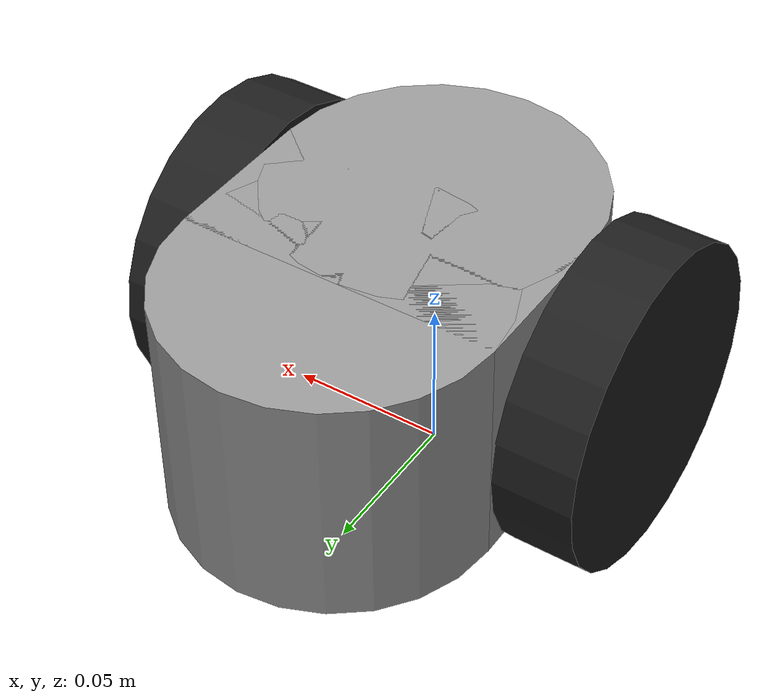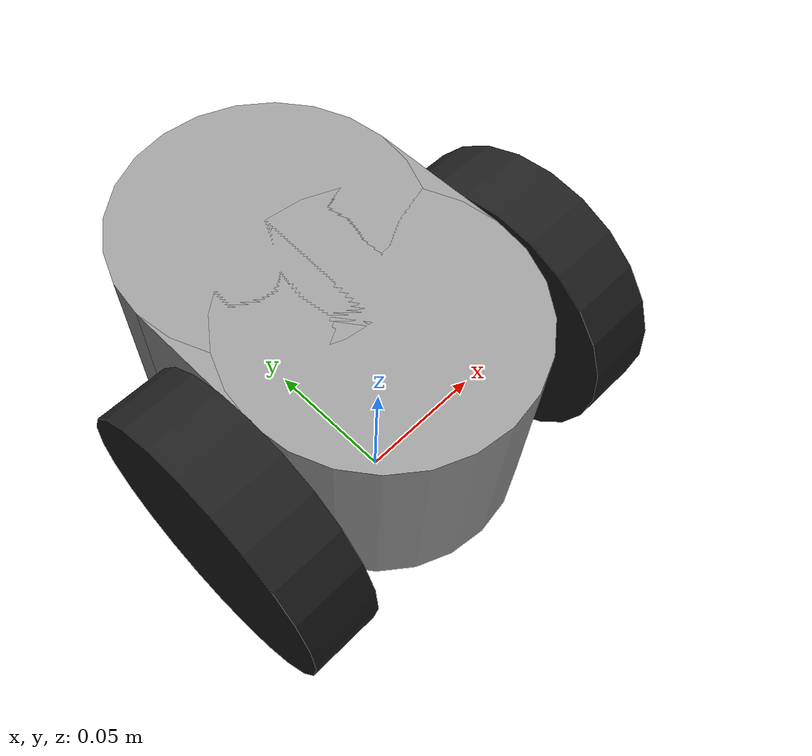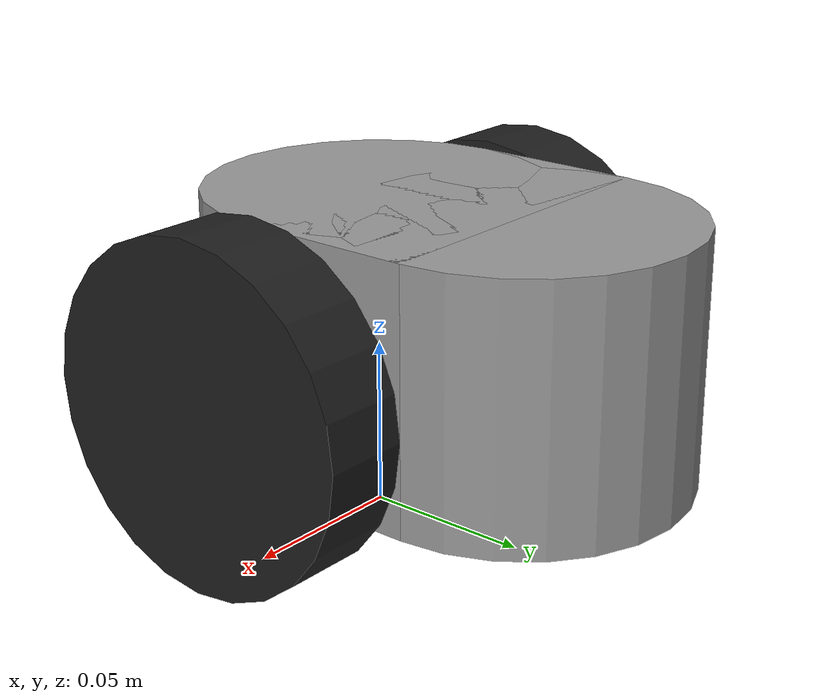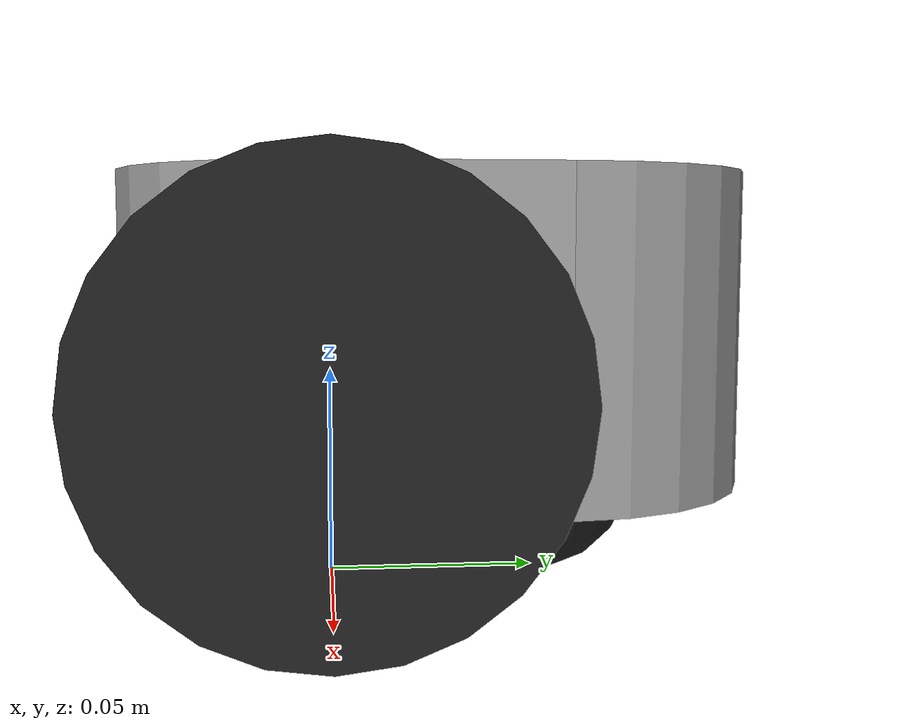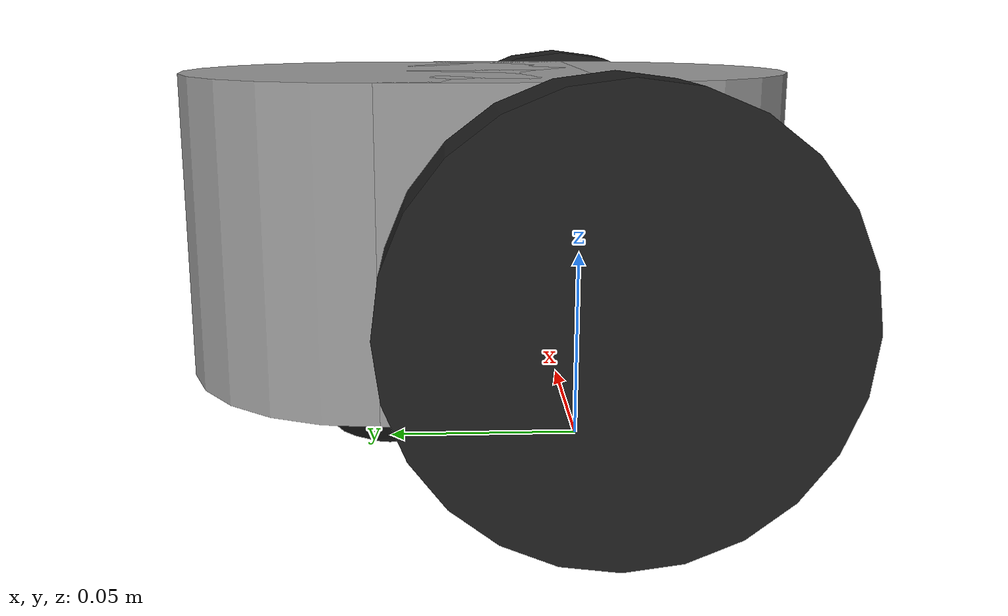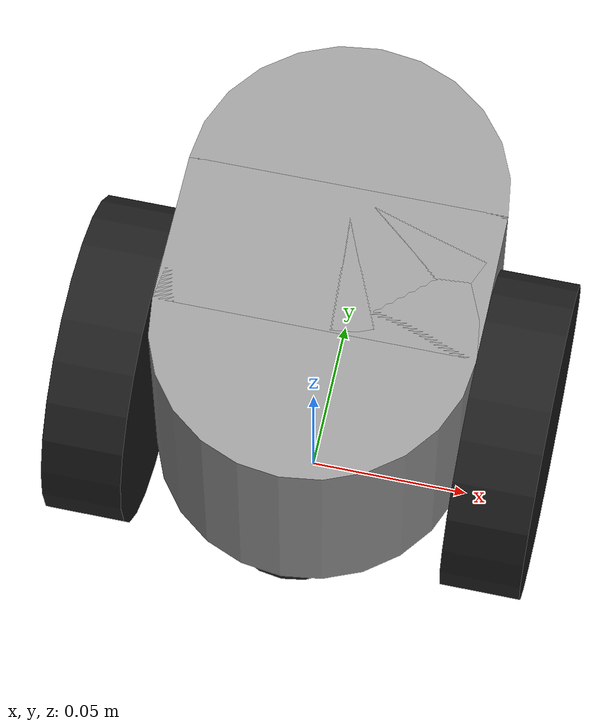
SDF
<?xml version='1.0'?>
<sdf version='1.6'>
  <model name='CSRobo'>
    <link name='Base_Frame'>
      <inertial>
        <mass>0.2</mass>
        <inertia>
          <ixx>0.00021875</ixx>
          <ixy>0</ixy>
          <ixz>0</ixz>
          <iyy>0.00021875</iyy>
          <iyz>0</iyz>
          <izz>0.00025</izz>
        </inertia>
        <pose frame=''>0 0 0 0 -0 0</pose>
      </inertial>
      <pose frame=''>0 0 0.06 0 -0 0</pose>
      <gravity>1</gravity>
      <self_collide>0</self_collide>
      <kinematic>0</kinematic>
      <enable_wind>0</enable_wind>
      <visual name='visual_rear'>
        <pose frame=''>0 0 0 0 -0 0</pose>
        <geometry>
          <cylinder>
            <radius>0.05</radius>
            <length>0.075</length>
          </cylinder>
        </geometry>
        <material>
          <lighting>1</lighting>
          <script>
            <uri>file://media/materials/scripts/gazebo.material</uri>
            <name>Gazebo/Grey</name>
          </script>
          <shader type='pixel'>
            <normal_map>__default__</normal_map>
          </shader>
          <ambient>0.3 0.3 0.3 1</ambient>
          <diffuse>0.7 0.7 0.7 1</diffuse>
          <specular>0.01 0.01 0.01 1</specular>
          <emissive>0 0 0 1</emissive>
        </material>
        <transparency>0</transparency>
        <cast_shadows>1</cast_shadows>
      </visual>
      <visual name='visual_front'>
        <pose frame=''>0 0.05 0 0 -0 0</pose>
        <geometry>
          <cylinder>
            <radius>0.05</radius>
            <length>0.075</length>
          </cylinder>
        </geometry>
        <material>
          <lighting>1</lighting>
          <script>
            <uri>file://media/materials/scripts/gazebo.material</uri>
            <name>Gazebo/Grey</name>
          </script>
          <shader type='pixel'>
            <normal_map>__default__</normal_map>
          </shader>
          <ambient>0.3 0.3 0.3 1</ambient>
          <diffuse>0.7 0.7 0.7 1</diffuse>
          <specular>0.01 0.01 0.01 1</specular>
          <emissive>0 0 0 1</emissive>
        </material>
        <transparency>0</transparency>
        <cast_shadows>1</cast_shadows>
      </visual>
      <visual name='visual_middle'>
        <pose frame=''>0 0.025 0 0 -0 0</pose>
        <geometry>
          <box>
            <size>0.1 0.05 0.075</size>
          </box>
        </geometry>
        <material>
          <lighting>1</lighting>
          <script>
            <uri>file://media/materials/scripts/gazebo.material</uri>
            <name>Gazebo/Grey</name>
          </script>
          <shader type='pixel'>
            <normal_map>__default__</normal_map>
          </shader>
          <ambient>0.3 0.3 0.3 1</ambient>
          <diffuse>0.7 0.7 0.7 1</diffuse>
          <specular>0.01 0.01 0.01 1</specular>
          <emissive>0 0 0 1</emissive>
        </material>
        <transparency>0</transparency>
        <cast_shadows>1</cast_shadows>
      </visual>
      <collision name='collision_middle'>
        <laser_retro>0</laser_retro>
        <max_contacts>10</max_contacts>
        <pose frame=''>0 0.025 0 0 -0 0</pose>
        <geometry>
          <box>
            <size>0.1 0.05 0.075</size>
          </box>
        </geometry>
        <surface>
          <friction>
            <ode>
              <mu>1</mu>
              <mu2>1</mu2>
              <fdir1>0 0 0</fdir1>
              <slip1>0</slip1>
              <slip2>0</slip2>
            </ode>
            <torsional>
              <coefficient>1</coefficient>
              <patch_radius>0</patch_radius>
              <surface_radius>0</surface_radius>
              <use_patch_radius>1</use_patch_radius>
              <ode>
                <slip>0</slip>
              </ode>
            </torsional>
          </friction>
          <bounce>
            <restitution_coefficient>0</restitution_coefficient>
            <threshold>1e+06</threshold>
          </bounce>
          <contact>
            <collide_without_contact>0</collide_without_contact>
            <collide_without_contact_bitmask>1</collide_without_contact_bitmask>
            <collide_bitmask>1</collide_bitmask>
            <ode>
              <soft_cfm>0</soft_cfm>
              <soft_erp>0.2</soft_erp>
              <kp>1e+13</kp>
              <kd>1</kd>
              <max_vel>0.01</max_vel>
              <min_depth>0</min_depth>
            </ode>
            <bullet>
              <split_impulse>1</split_impulse>
              <split_impulse_penetration_threshold>-0.01</split_impulse_penetration_threshold>
              <soft_cfm>0</soft_cfm>
              <soft_erp>0.2</soft_erp>
              <kp>1e+13</kp>
              <kd>1</kd>
            </bullet>
          </contact>
        </surface>
      </collision>
      <collision name='collision_front'>
        <laser_retro>0</laser_retro>
        <max_contacts>10</max_contacts>
        <pose frame=''>0 0.05 0 0 -0 0</pose>
        <geometry>
          <cylinder>
            <radius>0.05</radius>
            <length>0.075</length>
          </cylinder>
        </geometry>
        <surface>
          <friction>
            <ode>
              <mu>1</mu>
              <mu2>1</mu2>
              <fdir1>0 0 0</fdir1>
              <slip1>0</slip1>
              <slip2>0</slip2>
            </ode>
            <torsional>
              <coefficient>1</coefficient>
              <patch_radius>0</patch_radius>
              <surface_radius>0</surface_radius>
              <use_patch_radius>1</use_patch_radius>
              <ode>
                <slip>0</slip>
              </ode>
            </torsional>
          </friction>
          <bounce>
            <restitution_coefficient>0</restitution_coefficient>
            <threshold>1e+06</threshold>
          </bounce>
          <contact>
            <collide_without_contact>0</collide_without_contact>
            <collide_without_contact_bitmask>1</collide_without_contact_bitmask>
            <collide_bitmask>1</collide_bitmask>
            <ode>
              <soft_cfm>0</soft_cfm>
              <soft_erp>0.2</soft_erp>
              <kp>1e+13</kp>
              <kd>1</kd>
              <max_vel>0.01</max_vel>
              <min_depth>0</min_depth>
            </ode>
            <bullet>
              <split_impulse>1</split_impulse>
              <split_impulse_penetration_threshold>-0.01</split_impulse_penetration_threshold>
              <soft_cfm>0</soft_cfm>
              <soft_erp>0.2</soft_erp>
              <kp>1e+13</kp>
              <kd>1</kd>
            </bullet>
          </contact>
        </surface>
      </collision>
      <collision name='collision_rear'>
        <laser_retro>0</laser_retro>
        <max_contacts>10</max_contacts>
        <pose frame=''>0 0 0 0 -0 0</pose>
        <geometry>
          <cylinder>
            <radius>0.05</radius>
            <length>0.075</length>
          </cylinder>
        </geometry>
        <surface>
          <friction>
            <ode>
              <mu>1</mu>
              <mu2>1</mu2>
              <fdir1>0 0 0</fdir1>
              <slip1>0</slip1>
              <slip2>0</slip2>
            </ode>
            <torsional>
              <coefficient>1</coefficient>
              <patch_radius>0</patch_radius>
              <surface_radius>0</surface_radius>
              <use_patch_radius>1</use_patch_radius>
              <ode>
                <slip>0</slip>
              </ode>
            </torsional>
          </friction>
          <bounce>
            <restitution_coefficient>0</restitution_coefficient>
            <threshold>1e+06</threshold>
          </bounce>
          <contact>
            <collide_without_contact>0</collide_without_contact>
            <collide_without_contact_bitmask>1</collide_without_contact_bitmask>
            <collide_bitmask>1</collide_bitmask>
            <ode>
              <soft_cfm>0</soft_cfm>
              <soft_erp>0.2</soft_erp>
              <kp>1e+13</kp>
              <kd>1</kd>
              <max_vel>0.01</max_vel>
              <min_depth>0</min_depth>
            </ode>
            <bullet>
              <split_impulse>1</split_impulse>
              <split_impulse_penetration_threshold>-0.01</split_impulse_penetration_threshold>
              <soft_cfm>0</soft_cfm>
              <soft_erp>0.2</soft_erp>
              <kp>1e+13</kp>
              <kd>1</kd>
            </bullet>
          </contact>
        </surface>
      </collision>
    </link>
    <link name='ball_front'>
      <inertial>
        <mass>0.1</mass>
        <inertia>
          <ixx>2.5e-05</ixx>
          <ixy>0</ixy>
          <ixz>0</ixz>
          <iyy>2.5e-05</iyy>
          <iyz>0</iyz>
          <izz>2.5e-05</izz>
        </inertia>
        <pose frame=''>0 0 0 0 -0 0</pose>
      </inertial>
      <pose frame=''>0 0.05 0.025 0 -0 0</pose>
      <gravity>1</gravity>
      <self_collide>0</self_collide>
      <kinematic>0</kinematic>
      <enable_wind>0</enable_wind>
      <visual name='visual'>
        <pose frame=''>0 0 0 0 -0 0</pose>
        <geometry>
          <sphere>
            <radius>0.025</radius>
          </sphere>
        </geometry>
        <material>
          <lighting>1</lighting>
          <script>
            <uri>file://media/materials/scripts/gazebo.material</uri>
            <name>Gazebo/Black</name>
          </script>
          <shader type='pixel'>
            <normal_map>__default__</normal_map>
          </shader>
          <ambient>0 0 0 1</ambient>
          <diffuse>0 0 0 1</diffuse>
          <specular>0.01 0.01 0.01 1</specular>
          <emissive>0 0 0 1</emissive>
        </material>
        <transparency>0</transparency>
        <cast_shadows>1</cast_shadows>
      </visual>
      <collision name='collision'>
        <laser_retro>0</laser_retro>
        <max_contacts>10</max_contacts>
        <pose frame=''>0 0 0 0 -0 0</pose>
        <geometry>
          <sphere>
            <radius>0.025</radius>
          </sphere>
        </geometry>
        <surface>
          <friction>
            <ode>
              <mu>0</mu>
              <mu2>0</mu2>
              <fdir1>0 0 0</fdir1>
              <slip1>0</slip1>
              <slip2>0</slip2>
            </ode>
            <torsional>
              <coefficient>1</coefficient>
              <patch_radius>0</patch_radius>
              <surface_radius>0</surface_radius>
              <use_patch_radius>1</use_patch_radius>
              <ode>
                <slip>0</slip>
              </ode>
            </torsional>
          </friction>
          <bounce>
            <restitution_coefficient>0</restitution_coefficient>
            <threshold>1e+06</threshold>
          </bounce>
          <contact>
            <collide_without_contact>0</collide_without_contact>
            <collide_without_contact_bitmask>1</collide_without_contact_bitmask>
            <collide_bitmask>1</collide_bitmask>
            <ode>
              <soft_cfm>0</soft_cfm>
              <soft_erp>0.2</soft_erp>
              <kp>1e+13</kp>
              <kd>1</kd>
              <max_vel>0.01</max_vel>
              <min_depth>0</min_depth>
            </ode>
            <bullet>
              <split_impulse>1</split_impulse>
              <split_impulse_penetration_threshold>-0.01</split_impulse_penetration_threshold>
              <soft_cfm>0</soft_cfm>
              <soft_erp>0.2</soft_erp>
              <kp>1e+13</kp>
              <kd>1</kd>
            </bullet>
          </contact>
        </surface>
      </collision>
    </link>
    <link name='ball_rear'>
      <inertial>
        <mass>0.1</mass>
        <inertia>
          <ixx>2.5e-05</ixx>
          <ixy>0</ixy>
          <ixz>0</ixz>
          <iyy>2.5e-05</iyy>
          <iyz>0</iyz>
          <izz>2.5e-05</izz>
        </inertia>
        <pose frame=''>0 0 0 0 -0 0</pose>
      </inertial>
      <pose frame=''>0 -0.025 0.025 0 -0 0</pose>
      <gravity>1</gravity>
      <self_collide>0</self_collide>
      <kinematic>0</kinematic>
      <enable_wind>0</enable_wind>
      <visual name='visual'>
        <pose frame=''>0 0 0 0 -0 0</pose>
        <geometry>
          <sphere>
            <radius>0.025</radius>
          </sphere>
        </geometry>
        <material>
          <lighting>1</lighting>
          <script>
            <uri>file://media/materials/scripts/gazebo.material</uri>
            <name>Gazebo/Black</name>
          </script>
          <shader type='pixel'>
            <normal_map>__default__</normal_map>
          </shader>
          <ambient>0 0 0 1</ambient>
          <diffuse>0 0 0 1</diffuse>
          <specular>0.01 0.01 0.01 1</specular>
          <emissive>0 0 0 1</emissive>
        </material>
        <transparency>0</transparency>
        <cast_shadows>1</cast_shadows>
      </visual>
      <collision name='collision'>
        <laser_retro>0</laser_retro>
        <max_contacts>10</max_contacts>
        <pose frame=''>0 0 0 0 -0 0</pose>
        <geometry>
          <sphere>
            <radius>0.025</radius>
          </sphere>
        </geometry>
        <surface>
          <friction>
            <ode>
              <mu>0</mu>
              <mu2>0</mu2>
              <fdir1>0 0 0</fdir1>
              <slip1>0</slip1>
              <slip2>0</slip2>
            </ode>
            <torsional>
              <coefficient>1</coefficient>
              <patch_radius>0</patch_radius>
              <surface_radius>0</surface_radius>
              <use_patch_radius>1</use_patch_radius>
              <ode>
                <slip>0</slip>
              </ode>
            </torsional>
          </friction>
          <bounce>
            <restitution_coefficient>0</restitution_coefficient>
            <threshold>1e+06</threshold>
          </bounce>
          <contact>
            <collide_without_contact>0</collide_without_contact>
            <collide_without_contact_bitmask>1</collide_without_contact_bitmask>
            <collide_bitmask>1</collide_bitmask>
            <ode>
              <soft_cfm>0</soft_cfm>
              <soft_erp>0.2</soft_erp>
              <kp>1e+13</kp>
              <kd>1</kd>
              <max_vel>0.01</max_vel>
              <min_depth>0</min_depth>
            </ode>
            <bullet>
              <split_impulse>1</split_impulse>
              <split_impulse_penetration_threshold>-0.01</split_impulse_penetration_threshold>
              <soft_cfm>0</soft_cfm>
              <soft_erp>0.2</soft_erp>
              <kp>1e+13</kp>
              <kd>1</kd>
            </bullet>
          </contact>
        </surface>
      </collision>
    </link>
    <link name='r_wheel'>
      <inertial>
        <mass>1</mass>
        <inertia>
          <ixx>0.145833</ixx>
          <ixy>0</ixy>
          <ixz>0</ixz>
          <iyy>0.145833</iyy>
          <iyz>0</iyz>
          <izz>0.125</izz>
        </inertia>
        <pose frame=''>0 0 0 0 -0 0</pose>
      </inertial>
      <pose frame=''>0.0625 0 0.05 0 1.5707 0</pose>
      <gravity>1</gravity>
      <self_collide>0</self_collide>
      <kinematic>0</kinematic>
      <enable_wind>0</enable_wind>
      <visual name='visual'>
        <pose frame=''>0 0 0 0 -0 0</pose>
        <geometry>
          <cylinder>
            <radius>0.05</radius>
            <length>0.025</length>
          </cylinder>
        </geometry>
        <material>
          <lighting>1</lighting>
          <script>
            <uri>file://media/materials/scripts/gazebo.material</uri>
            <name>Gazebo/Black</name>
          </script>
          <shader type='pixel'>
            <normal_map>__default__</normal_map>
          </shader>
          <ambient>0 0 0 1</ambient>
          <diffuse>0 0 0 1</diffuse>
          <specular>0.01 0.01 0.01 1</specular>
          <emissive>0 0 0 1</emissive>
        </material>
        <transparency>0</transparency>
        <cast_shadows>1</cast_shadows>
      </visual>
      <collision name='collision'>
        <laser_retro>0</laser_retro>
        <max_contacts>10</max_contacts>
        <pose frame=''>0 0 0 0 -0 0</pose>
        <geometry>
          <cylinder>
            <radius>0.05</radius>
            <length>0.025</length>
          </cylinder>
        </geometry>
        <surface>
          <friction>
            <ode>
              <mu>1</mu>
              <mu2>1</mu2>
              <fdir1>0 0 0</fdir1>
              <slip1>0</slip1>
              <slip2>0</slip2>
            </ode>
            <torsional>
              <coefficient>1</coefficient>
              <patch_radius>0</patch_radius>
              <surface_radius>0</surface_radius>
              <use_patch_radius>1</use_patch_radius>
              <ode>
                <slip>0</slip>
              </ode>
            </torsional>
          </friction>
          <bounce>
            <restitution_coefficient>0</restitution_coefficient>
            <threshold>1e+06</threshold>
          </bounce>
          <contact>
            <collide_without_contact>0</collide_without_contact>
            <collide_without_contact_bitmask>1</collide_without_contact_bitmask>
            <collide_bitmask>1</collide_bitmask>
            <ode>
              <soft_cfm>0</soft_cfm>
              <soft_erp>0.2</soft_erp>
              <kp>1e+13</kp>
              <kd>1</kd>
              <max_vel>0.01</max_vel>
              <min_depth>0</min_depth>
            </ode>
            <bullet>
              <split_impulse>1</split_impulse>
              <split_impulse_penetration_threshold>-0.01</split_impulse_penetration_threshold>
              <soft_cfm>0</soft_cfm>
              <soft_erp>0.2</soft_erp>
              <kp>1e+13</kp>
              <kd>1</kd>
            </bullet>
          </contact>
        </surface>
      </collision>
    </link>
    <link name='l_wheel'>
      <inertial>
        <mass>1</mass>
        <inertia>
          <ixx>0.145833</ixx>
          <ixy>0</ixy>
          <ixz>0</ixz>
          <iyy>0.145833</iyy>
          <iyz>0</iyz>
          <izz>0.125</izz>
        </inertia>
        <pose frame=''>0 0 0 0 -0 0</pose>
      </inertial>
      <pose frame=''>-0.0625 0 0.05 0 1.5707 0</pose>
      <gravity>1</gravity>
      <self_collide>0</self_collide>
      <kinematic>0</kinematic>
      <enable_wind>0</enable_wind>
      <visual name='visual'>
        <pose frame=''>0 0 0 0 -0 0</pose>
        <geometry>
          <cylinder>
            <radius>0.05</radius>
            <length>0.025</length>
          </cylinder>
        </geometry>
        <material>
          <lighting>1</lighting>
          <script>
            <uri>file://media/materials/scripts/gazebo.material</uri>
            <name>Gazebo/Black</name>
          </script>
          <shader type='pixel'>
            <normal_map>__default__</normal_map>
          </shader>
          <ambient>0 0 0 1</ambient>
          <diffuse>0 0 0 1</diffuse>
          <specular>0.01 0.01 0.01 1</specular>
          <emissive>0 0 0 1</emissive>
        </material>
        <transparency>0</transparency>
        <cast_shadows>1</cast_shadows>
      </visual>
      <collision name='collision'>
        <laser_retro>0</laser_retro>
        <max_contacts>10</max_contacts>
        <pose frame=''>0 0 0 0 -0 0</pose>
        <geometry>
          <cylinder>
            <radius>0.5</radius>
            <length>1</length>
          </cylinder>
        </geometry>
        <surface>
          <friction>
            <ode>
              <mu>1</mu>
              <mu2>1</mu2>
              <fdir1>0 0 0</fdir1>
              <slip1>0</slip1>
              <slip2>0</slip2>
            </ode>
            <torsional>
              <coefficient>1</coefficient>
              <patch_radius>0</patch_radius>
              <surface_radius>0</surface_radius>
              <use_patch_radius>1</use_patch_radius>
              <ode>
                <slip>0</slip>
              </ode>
            </torsional>
          </friction>
          <bounce>
            <restitution_coefficient>0</restitution_coefficient>
            <threshold>1e+06</threshold>
          </bounce>
          <contact>
            <collide_without_contact>0</collide_without_contact>
            <collide_without_contact_bitmask>1</collide_without_contact_bitmask>
            <collide_bitmask>1</collide_bitmask>
            <ode>
              <soft_cfm>0</soft_cfm>
              <soft_erp>0.2</soft_erp>
              <kp>1e+13</kp>
              <kd>1</kd>
              <max_vel>0.01</max_vel>
              <min_depth>0</min_depth>
            </ode>
            <bullet>
              <split_impulse>1</split_impulse>
              <split_impulse_penetration_threshold>-0.01</split_impulse_penetration_threshold>
              <soft_cfm>0</soft_cfm>
              <soft_erp>0.2</soft_erp>
              <kp>1e+13</kp>
              <kd>1</kd>
            </bullet>
          </contact>
        </surface>
      </collision>
    </link>
    <joint name='Base_Frame_JOINT_0' type='fixed'>
      <parent>Base_Frame</parent>
      <child>ball_rear</child>
      <pose frame=''>0 0 0 0 -0 0</pose>
      <physics>
        <ode>
          <limit>
            <cfm>0</cfm>
            <erp>0.2</erp>
          </limit>
          <suspension>
            <cfm>0</cfm>
            <erp>0.2</erp>
          </suspension>
        </ode>
      </physics>
    </joint>
    <joint name='Base_Frame_JOINT_1' type='fixed'>
      <parent>Base_Frame</parent>
      <child>ball_front</child>
      <pose frame=''>0 0 0 0 -0 0</pose>
      <physics>
        <ode>
          <limit>
            <cfm>0</cfm>
            <erp>0.2</erp>
          </limit>
          <suspension>
            <cfm>0</cfm>
            <erp>0.2</erp>
          </suspension>
        </ode>
      </physics>
    </joint>
    <joint name='r_wheel_joint' type='revolute'>
      <parent>Base_Frame</parent>
      <child>r_wheel</child>
      <pose frame=''>0 0 0 0 -0 0</pose>
      <axis>
        <xyz>1 0 0</xyz>
        <use_parent_model_frame>0</use_parent_model_frame>
        <limit>
          <lower>-1.79769e+308</lower>
          <upper>1.79769e+308</upper>
          <effort>-1</effort>
          <velocity>-1</velocity>
        </limit>
        <dynamics>
          <spring_reference>0</spring_reference>
          <spring_stiffness>0</spring_stiffness>
          <damping>0</damping>
        </dynamics>
      </axis>
      <physics>
        <ode>
          <limit>
            <cfm>0</cfm>
            <erp>0.2</erp>
          </limit>
          <suspension>
            <cfm>0</cfm>
            <erp>0.2</erp>
          </suspension>
        </ode>
      </physics>
    </joint>
    <joint name='l_wheel_joint' type='revolute'>
      <parent>Base_Frame</parent>
      <child>l_wheel</child>
      <pose frame=''>0 0 0 0 -0 0</pose>
      <axis>
        <xyz>1 0 0</xyz>
        <use_parent_model_frame>0</use_parent_model_frame>
        <limit>
          <lower>-1.79769e+308</lower>
          <upper>1.79769e+308</upper>
          <effort>-1</effort>
          <velocity>-1</velocity>
        </limit>
        <dynamics>
          <spring_reference>0</spring_reference>
          <spring_stiffness>0</spring_stiffness>
          <damping>0</damping>
        </dynamics>
      </axis>
      <physics>
        <ode>
          <limit>
            <cfm>0</cfm>
            <erp>0.2</erp>
          </limit>
          <suspension>
            <cfm>0</cfm>
            <erp>0.2</erp>
          </suspension>
        </ode>
      </physics>
    </joint>
    <static>0</static>
    <allow_auto_disable>1</allow_auto_disable>
  </model>
</sdf>
